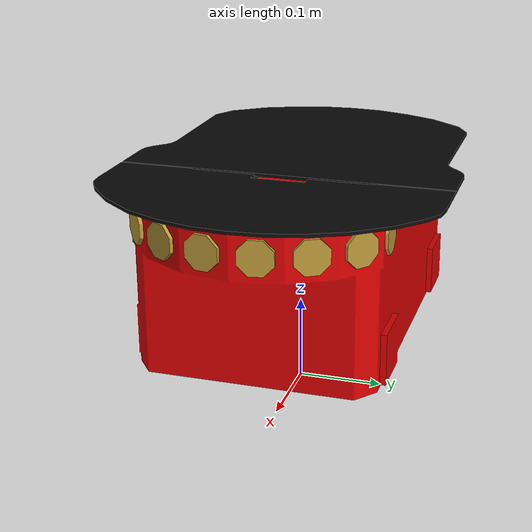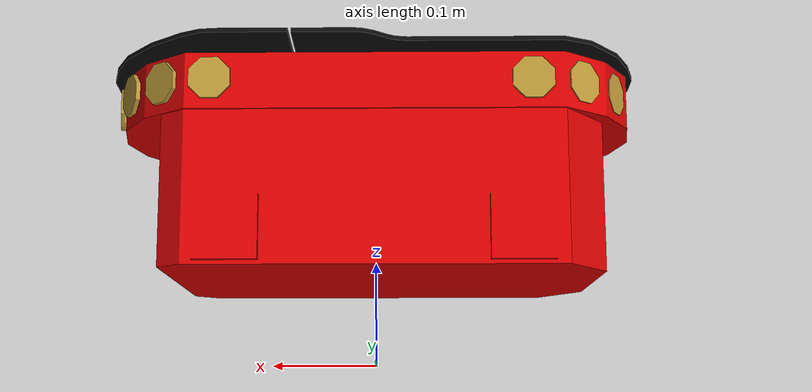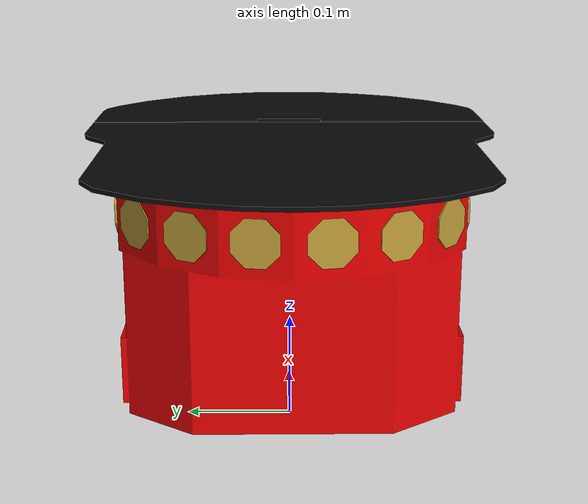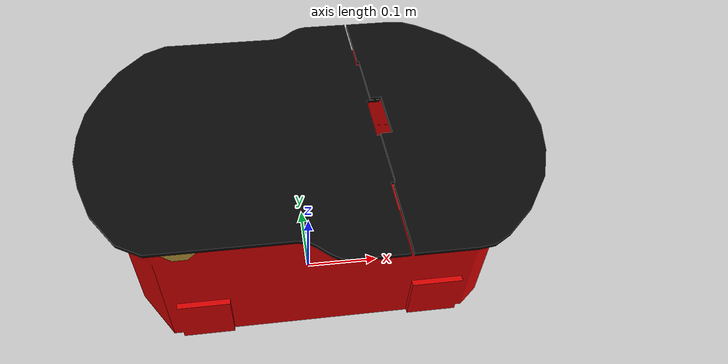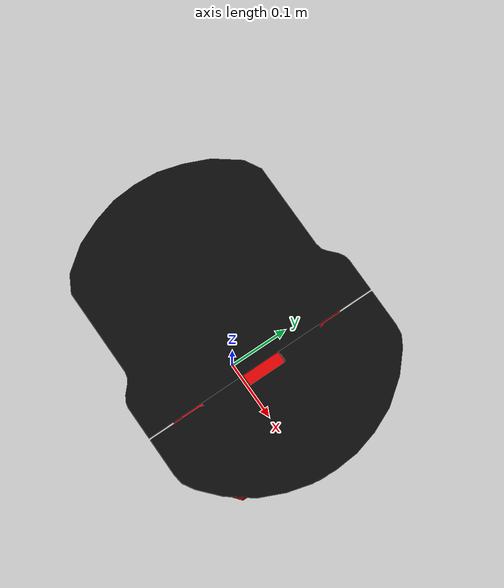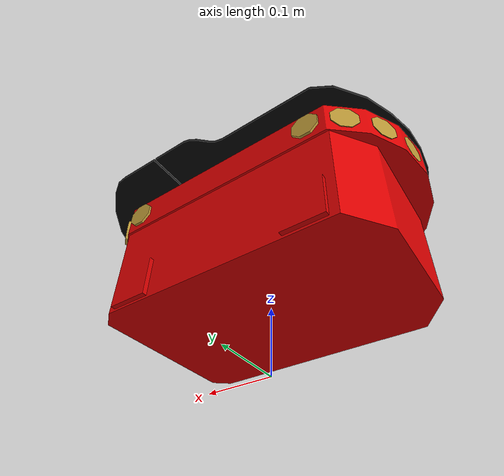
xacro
<?xml version="1.0"?>

<robot xmlns:sensor="http://playerstage.sourceforge.net/gazebo/xmlschema/#sensor"
       xmlns:controller="http://playerstage.sourceforge.net/gazebo/xmlschema/#controller"
       xmlns:interface="http://playerstage.sourceforge.net/gazebo/xmlschema/#interface"
       xmlns:xacro="http://ros.org/wiki/xacro"
>

<!-- Chassis -->
	<link name="base_link">
		<inertial>
			<mass value="10.0"/>
			<origin xyz="0 0 0.177"/>
			<inertia ixx="0.3338" ixy="0.0" ixz="0.0"
				 iyy="0.4783" iyz="0.0"
				 izz="0.3338"/>
		</inertial>
		<visual name="base_visual">
			<origin xyz="0 0 0.177" rpy="0 0 0"/>
			<geometry name="pioneer_geom">
				<mesh filename="package://amr_robots_description/meshes/p3at_meshes/chassis.stl"/>
			</geometry>
			<material name="ChassisRed">
				<color rgba="0.851 0.0 0.0 1.0"/>
			</material>
		</visual>
		<collision>
			<origin xyz="0 0 0.177" rpy="0 0 0"/>
				<geometry>
					<mesh filename="package://amr_robots_description/meshes/p3at_meshes/chassis.stl"/>
				</geometry>
		</collision>
	</link>
	<gazebo reference="base_link">
		<material value="Gazebo/Red"/>
	</gazebo>

<!-- Top -->
	<link name="top_plate">
		<inertial>
			<mass value="0.1"/>
			<origin xyz="-0.025 0 -0.223"/>
			<inertia ixx="1.0" ixy="0.0" ixz="0.0"
				 iyy="1.0" iyz="0.0"
 				izz="1.0"/>
		</inertial>
		<visual name="base_visual">
			<origin xyz="0 0 0" rpy="0 0 0"/>
			<geometry name="pioneer_geom">
				<mesh filename="package://amr_robots_description/meshes/p3at_meshes/top.stl"/>
			</geometry>
			<material name="TopBlack">
					<color rgba="0.038 0.038 0.038 1.0"/>
			</material>
		</visual>
		<collision>
			<origin xyz="0 0 0" rpy="0 0 0"/>
			<geometry>
				<box size="0 0 0"/>
			</geometry>
		</collision>
	</link>
	<gazebo reference="top_plate">
		<material value="Gazebo/Black"/>
	</gazebo>

	<joint name="base_top_joint" type="fixed">
		<origin xyz="0.003 0 0.274" rpy="0 0 0"/>
		<parent link="base_link"/>
		<child link="top_plate"/>
	</joint>
<!-- Front + Back Sonar -->
	<link name="front_sonar">
		<inertial>
			<mass value="0.1"/>
			<origin xyz="0 0 0"/>
			<inertia ixx="1.0" ixy="0.0" ixz="0.0"
				 iyy="1.0" iyz="0.0" izz="1.0"/>
		</inertial>
		<visual name="base_visual">
			<origin xyz="0 0 0" rpy="0 0 0"/>
			<geometry name="pioneer_geom">
				<mesh filename="package://amr_robots_description/meshes/p3at_meshes/front_sonar.stl"/>
			</geometry>
			<material name="SonarYellow">
				<color rgba="0.715 0.583 0.210 1.0"/>
			</material>
		</visual>
		<collision>
			<origin xyz="0 0 0" rpy="0 0 0"/>
			<geometry>
				<box size="0 0 0"/>
			</geometry>
		</collision>
	</link>
	<gazebo reference="front_sonar">
		<material value="Gazebo/Yellow"/>
	</gazebo>

	<joint name="base_front_joint" type="fixed">
		<origin xyz="0.193 0 0.25" rpy="0 0 0"/>
		<parent link="base_link"/>
		<child link="front_sonar"/>
	</joint>

	<link name="back_sonar">
		<inertial>
			<mass value="0.1"/>
			<origin xyz="0 0 0"/>
			<inertia ixx="1.0" ixy="0.0" ixz="0.0"
				 iyy="1.0" iyz="0.0" izz="1.0"/>
		</inertial>
		<visual name="base_visual">
			<origin xyz="0 0 0" rpy="0 0 0"/>
			<geometry name="pioneer_geom">
				<mesh filename="package://amr_robots_description/meshes/p3at_meshes/back_sonar.stl"/>
			</geometry>
			<material name="SonarYellow">
				<color rgba="0.715 0.583 0.210 1.0"/>
			</material>
		</visual>
		<collision>
			<origin xyz="0 0 0" rpy="0 0 0"/>
			<geometry>
				<box size="0 0 0"/>
			</geometry>
		</collision>
	</link>
	<gazebo reference="back_sonar">
		<material value="Gazebo/Yellow"/>
	</gazebo>

	<joint name="base_back_joint" type="fixed">
		<origin xyz="-0.187 0 0.247" rpy="0 0 0"/>
		<parent link="base_link"/>
		<child link="back_sonar"/>
	</joint>

<!-- Front Axles + Wheels + Hubcaps -->
<xacro:macro name="p3at_front" params="suffix reflect">
	<link name="p3at_front_${suffix}_axle">
		<inertial>
			<mass value="0.1"/>
			<origin xyz="0 0 0"/>
			<inertia ixx="1.0" ixy="0.0" ixz="0.0"
				 iyy="1.0" iyz="0.0" izz="1.0"/>
  	 	</inertial>
	<visual name="base_visual">
		<origin xyz="0 0 0" rpy="0 0 0"/>
		<geometry name="pioneer_geom">
			<mesh filename="package://amr_robots_description/meshes/p3at_meshes/axle.stl"/>
		</geometry>
		<material name="AxleGrey">
			<color rgba="0.5 0.5 0.5 1"/>
		</material>
	</visual>
	<collision>
		<origin xyz="0 0 0" rpy="0 0 0"/>
		<geometry>
			<box size="0 0 0"/>
		</geometry>
	</collision>
	</link>
	<gazebo reference="p3at_front_${suffix}_axle">
		<material value="Gazebo/Grey"/>
	</gazebo>

	<joint name="base_front_${suffix}_axle_joint" type="fixed">
		<origin xyz="0.135 ${reflect*0.156} 0.111" rpy="0 0 0"/>
		<parent link="base_link"/>
		<child link="p3at_front_${suffix}_axle"/>
	</joint>

	<link name="p3at_front_${suffix}_hub">
		<inertial>
			<mass value="0.1"/>
			<origin xyz="0 0 0"/>
			<inertia ixx="1.0" ixy="0.0" ixz="0.0"
				 iyy="1.0" iyz="0.0" izz="1.0"/>
  	 	</inertial>
	<visual name="base_visual">
		<origin xyz="0 0 0" rpy="0 0 0"/>
		<geometry name="pioneer_geom">
			<mesh filename="package://amr_robots_description/meshes/p3at_meshes/${suffix}_hubcap.stl"/>
		</geometry>
		<material name="HubcapYellow">
			<color rgba="1.0 0.811 0.151 1.0"/>
		</material>
	</visual>
	<collision>
		<origin xyz="0 0 0" rpy="0 0 0"/>
		<geometry>
			<box size="0 0 0"/>
		</geometry>
	</collision>
	</link>
	<gazebo reference="p3at_front_${suffix}_hub">
		<material value="Gazebo/Yellow"/>
	</gazebo>

	<joint name="base_front_${suffix}_hub_joint" type="fixed">
		<origin xyz="0 ${reflect*0.041} 0" rpy="0 0 0"/>
		<parent link="p3at_front_${suffix}_axle"/>
		<child link="p3at_front_${suffix}_hub"/>
	</joint>

	<link name="p3at_front_${suffix}_wheel">
		<inertial>
			<mass value="0.5"/>
			<origin xyz="0 0 0"/>
			<inertia ixx="0.012411765597" ixy="0" ixz="0"
         iyy="0.015218160428" iyz="0" izz="0.011763977943"/>
      </inertial>
	<visual name="base_visual">
		<origin xyz="0 0 0" rpy="0 0 0"/>
		<geometry name="pioneer_geom">
			<mesh filename="package://amr_robots_description/meshes/p3at_meshes/wheel.stl"/>
		</geometry>
		<material name="WheelBlack">
			<color rgba="0.117 0.117 0.117 1"/>
		</material>
	</visual>
	<collision>
		<origin xyz="0 0 0" rpy="${-3.1415927/2} 0 0"/>
		<geometry>
	    <!--mesh filename="package://amr_robots_description/meshes/p3at_meshes/wheel.stl"/-->
	    <cylinder radius="0.111" length="0.075"/>
		</geometry>
	</collision>
	</link>
	<gazebo reference="p3at_front_${suffix}_wheel">
		<material value="Gazebo/Black"/>
	</gazebo>

	<joint name="p3at_front_${suffix}_wheel_joint" type="continuous">
  	<axis xyz="0 1 0"/>
    <anchor xyz="0 0 0"/>
    <limit effort="100" velocity="100" />
    <joint_properties damping="0.7"/>
		<origin xyz="0 0 0" rpy="0 0 0"/>
		<parent link="p3at_front_${suffix}_hub"/>
		<child link="p3at_front_${suffix}_wheel"/>
	</joint>

<!-- Back Axles + Wheels + Hubcaps -->
	<link name="p3at_back_${suffix}_axle">
		<inertial>
			<mass value="0.1"/>
			<origin xyz="0 0 0"/>
			<inertia ixx="1.0" ixy="0.0" ixz="0.0"
				 iyy="1.0" iyz="0.0" izz="1.0"/>
  	 	</inertial>
	<visual name="base_visual">
		<origin xyz="0 0 0" rpy="0 0 0"/>
		<geometry name="pioneer_geom">
			<mesh filename="package://amr_robots_description/meshes/p3at_meshes/axle.stl"/>
		</geometry>
		<material name="AxleGrey">
			<color rgba="0.5 0.5 0.5 1"/>
		</material>
	</visual>
	<collision>
		<origin xyz="0 0 0" rpy="0 0 0"/>
		<geometry>
			<mesh filename="package://amr_robots_description/meshes/p3at_meshes/axle.stl"/>
		</geometry>
	</collision>
	</link>
	<gazebo reference="p3at_back_${suffix}_axle">
		<material value="Gazebo/Grey"/>
	</gazebo>

	<joint name="bp3at_back_${suffix}_axle_joint" type="fixed">
		<origin xyz="-0.134 ${reflect*0.156} 0.111" rpy="0 0 0"/>
		<parent link="base_link"/>
		<child link="p3at_back_${suffix}_axle"/>
	</joint>

	<link name="p3at_back_${suffix}_hub">
		<inertial>
			<mass value="0.1"/>
			<origin xyz="0 0 0"/>
			<inertia ixx="1.0" ixy="0.0" ixz="0.0"
				 iyy="1.0" iyz="0.0" izz="1.0"/>
  	 	</inertial>
	<visual name="base_visual">
		<origin xyz="0 0 0" rpy="0 0 0"/>
		<geometry name="pioneer_geom">
			<mesh filename="package://amr_robots_description/meshes/p3at_meshes/${suffix}_hubcap.stl"/>
		</geometry>
		<material name="HubcapYellow"/>
	</visual>
	<collision>
		<origin xyz="0 0 0" rpy="0 0 0"/>
		<geometry>
			<mesh filename="package://amr_robots_description/meshes/p3at_meshes/${suffix}_hubcap.stl"/>
		</geometry>
	</collision>
	</link>
	<gazebo reference="p3at_back_${suffix}_hub">
		<material value="Gazebo/Yellow"/>
	</gazebo>

	<joint name="p3at_back_${suffix}_hub_joint" type="fixed">
		<origin xyz="-0 ${reflect*0.041} 0" rpy="0 0 0"/>
		<parent link="p3at_back_${suffix}_axle"/>
		<child link="p3at_back_${suffix}_hub"/>
	</joint>

	<link name="p3at_back_${suffix}_wheel">
		<inertial>
			<mass value="0.5"/>
			<origin xyz="0 0 0"/>
			<inertia ixx="0.012411765597" ixy="0" ixz="0"
         iyy="0.015218160428" iyz="0" izz="0.011763977943"/>
      </inertial>
	<visual name="base_visual">
		<origin xyz="0 0 0" rpy="0 0 0"/>
		<geometry name="pioneer_geom">
			<mesh filename="package://amr_robots_description/meshes/p3at_meshes/wheel.stl"/>
		</geometry>
		<material name="WheelBlack"/>
	</visual>
	<collision>
		<origin xyz="0 0 0" rpy="${-3.1415927/2} 0 0"/>
		<geometry>
	    <!--mesh filename="package://amr_robots_description/meshes/p3at_meshes/wheel.stl"/-->
	    <cylinder radius="0.111" length="0.075"/>
		</geometry>
	</collision>
	</link>
	<gazebo reference="p3at_back_${suffix}_wheel">
		<material value="Gazebo/Black"/>
	</gazebo>

	<joint name="p3at_back_${suffix}_wheel_joint" type="continuous">
	  <axis xyz="0 1 0"/>
    <anchor xyz="0 0 0"/>
    <limit effort="100" velocity="100" />
    <joint_properties damping="0.7"/>
		<origin xyz="0 0 0" rpy="0 0 0"/>
		<parent link="p3at_back_${suffix}_hub"/>
		<child link="p3at_back_${suffix}_wheel"/>
	</joint>

  <gazebo reference="p3at_back_${suffix}_wheel">
    <kp>1000000.0</kp> <!-- kp and kd for rubber -->
    <kd>100.0</kd>
    <mu1>10.0</mu1>
    <mu2>1.0</mu2>
    <fdir1>0 1 0</fdir1> <!-- is this correct? -->
    <maxVel>1.0</maxVel>
    <minDepth>0.00</minDepth>
  </gazebo>

  <gazebo reference="p3at_front_${suffix}_wheel">
    <kp>1000000.0</kp> <!-- kp and kd for rubber -->
    <kd>100.0</kd>
    <mu1>10.0</mu1>
    <mu2>1.0</mu2>
    <fdir1>0 1 0</fdir1> <!-- is this correct? -->
    <maxVel>1.0</maxVel>
    <minDepth>0.00</minDepth>
  </gazebo>

</xacro:macro>

<xacro:macro name="p3at_gazebo_ext">

<gazebo>
  <plugin name="skid_steer_drive_controller" filename="libgazebo_ros_skid_steer_drive.so">
    <updateRate>100.0</updateRate>
    <robotNamespace>/</robotNamespace>
    <leftFrontJoint>p3at_front_left_wheel_joint</leftFrontJoint>
    <rightFrontJoint>p3at_front_right_wheel_joint</rightFrontJoint>
    <leftRearJoint>p3at_back_left_wheel_joint</leftRearJoint>
    <rightRearJoint>p3at_back_right_wheel_joint</rightRearJoint>
    <wheelSeparation>0.4</wheelSeparation>
    <wheelDiameter>0.215</wheelDiameter>
    <robotBaseFrame>base_link</robotBaseFrame>
    <torque>200</torque>
    <topicName>cmd_vel</topicName>
  </plugin>
</gazebo>

</xacro:macro>

</robot>
